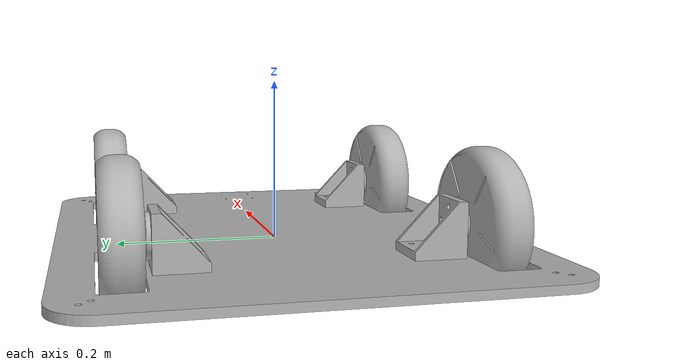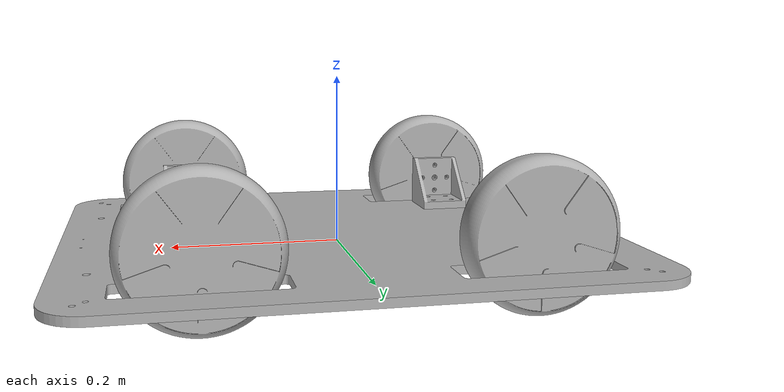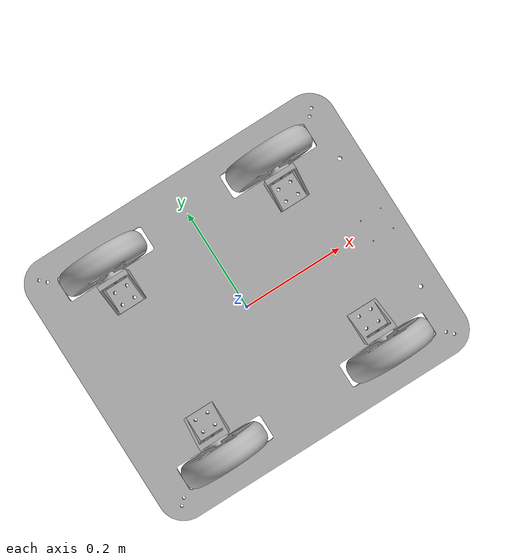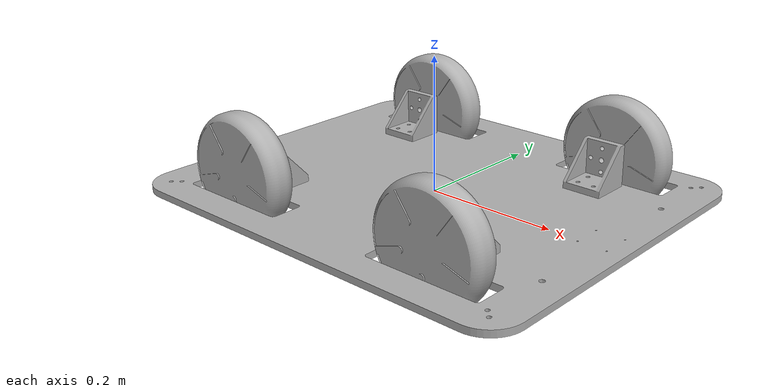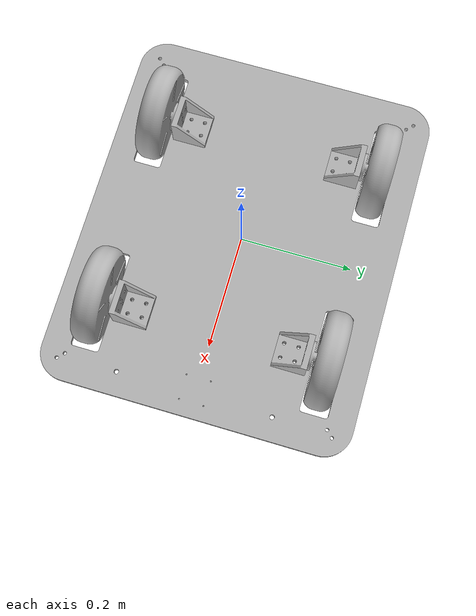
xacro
<?xml version="1.0" ?>
<robot name="rfid_bot" xmlns:xacro="http://www.ros.org/wiki/xacro">

<xacro:include filename="$(find rfid_bot_description)/urdf/materials.xacro" />
<xacro:include filename="$(find rfid_bot_description)/urdf/rfid_bot.trans" />
<xacro:include filename="$(find rfid_bot_description)/urdf/rfid_bot.gazebo" />

<link name="base_link">
  <inertial>
    <origin xyz="-0.0001203609283711639 -9.007685506002144e-08 0.005" rpy="0 0 0"/>
    <mass value="2.3676720209661735"/>
    <inertia ixx="0.054685" iyy="0.084178" izz="0.138823" ixy="0.0" iyz="0.0" ixz="0.0"/>
  </inertial>
  <visual>
    <origin xyz="0 0 0" rpy="0 0 0"/>
    <geometry>
      <mesh filename="file://$(find rfid_bot_description)/meshes/base_link.stl" scale="0.001 0.001 0.001"/>
    </geometry>
    <material name="silver"/>
  </visual>
  <collision>
    <origin xyz="0 0 0" rpy="0 0 0"/>
    <geometry>
      <mesh filename="file://$(find rfid_bot_description)/meshes/base_link.stl" scale="0.001 0.001 0.001"/>
    </geometry>
  </collision>
</link>

<link name="motor_holder_front_right_1">
  <inertial>
    <origin xyz="0.012727999999996908 -0.0025432300955718357 0.0210109228668195" rpy="0 0 0"/>
    <mass value="0.1994053104208443"/>
    <inertia ixx="0.000127" iyy="0.000144" izz="0.000136" ixy="0.0" iyz="3.3e-05" ixz="-0.0"/>
  </inertial>
  <visual>
    <origin xyz="-0.162272 0.148728 -0.01" rpy="0 0 0"/>
    <geometry>
      <mesh filename="file://$(find rfid_bot_description)/meshes/motor_holder_front_right_1.stl" scale="0.001 0.001 0.001"/>
    </geometry>
    <material name="silver"/>
  </visual>
  <collision>
    <origin xyz="-0.162272 0.148728 -0.01" rpy="0 0 0"/>
    <geometry>
      <mesh filename="file://$(find rfid_bot_description)/meshes/motor_holder_front_right_1.stl" scale="0.001 0.001 0.001"/>
    </geometry>
  </collision>
</link>

<link name="motor_holder_back_right_1">
  <inertial>
    <origin xyz="0.012727999999996908 -0.0025432300955718357 0.0210109228668195" rpy="0 0 0"/>
    <mass value="0.1994053104208443"/>
    <inertia ixx="0.000127" iyy="0.000144" izz="0.000136" ixy="0.0" iyz="3.3e-05" ixz="-0.0"/>
  </inertial>
  <visual>
    <origin xyz="0.187728 0.148728 -0.01" rpy="0 0 0"/>
    <geometry>
      <mesh filename="file://$(find rfid_bot_description)/meshes/motor_holder_back_right_1.stl" scale="0.001 0.001 0.001"/>
    </geometry>
    <material name="silver"/>
  </visual>
  <collision>
    <origin xyz="0.187728 0.148728 -0.01" rpy="0 0 0"/>
    <geometry>
      <mesh filename="file://$(find rfid_bot_description)/meshes/motor_holder_back_right_1.stl" scale="0.001 0.001 0.001"/>
    </geometry>
  </collision>
</link>

<link name="motor_holder_front_left_1">
  <inertial>
    <origin xyz="-0.012727999999995326 0.0025437032647091795 0.021010922866819493" rpy="0 0 0"/>
    <mass value="0.19940531042084406"/>
    <inertia ixx="0.000127" iyy="0.000144" izz="0.000136" ixy="0.0" iyz="-3.3e-05" ixz="0.0"/>
  </inertial>
  <visual>
    <origin xyz="-0.187728 -0.149005 -0.01" rpy="0 0 0"/>
    <geometry>
      <mesh filename="file://$(find rfid_bot_description)/meshes/motor_holder_front_left_1.stl" scale="0.001 0.001 0.001"/>
    </geometry>
    <material name="silver"/>
  </visual>
  <collision>
    <origin xyz="-0.187728 -0.149005 -0.01" rpy="0 0 0"/>
    <geometry>
      <mesh filename="file://$(find rfid_bot_description)/meshes/motor_holder_front_left_1.stl" scale="0.001 0.001 0.001"/>
    </geometry>
  </collision>
</link>

<link name="motor_holder_back_left_1">
  <inertial>
    <origin xyz="-0.012727999999996298 0.002543703264736019 0.021010922866819493" rpy="0 0 0"/>
    <mass value="0.19940531042084406"/>
    <inertia ixx="0.000127" iyy="0.000144" izz="0.000136" ixy="0.0" iyz="-3.3e-05" ixz="0.0"/>
  </inertial>
  <visual>
    <origin xyz="0.162272 -0.149005 -0.01" rpy="0 0 0"/>
    <geometry>
      <mesh filename="file://$(find rfid_bot_description)/meshes/motor_holder_back_left_1.stl" scale="0.001 0.001 0.001"/>
    </geometry>
    <material name="silver"/>
  </visual>
  <collision>
    <origin xyz="0.162272 -0.149005 -0.01" rpy="0 0 0"/>
    <geometry>
      <mesh filename="file://$(find rfid_bot_description)/meshes/motor_holder_back_left_1.stl" scale="0.001 0.001 0.001"/>
    </geometry>
  </collision>
</link>

<link name="motor_front_right_1">
  <inertial>
    <origin xyz="5.828670879282072e-16 -0.03070345073743927 5.551115123125783e-17" rpy="0 0 0"/>
    <mass value="2.1541038683930718"/>
    <inertia ixx="0.00403" iyy="0.007461" izz="0.00403" ixy="0.0" iyz="-0.0" ixz="-0.0"/>
  </inertial>
  <visual>
    <origin xyz="-0.175 0.171 -0.045" rpy="0 0 0"/>
    <geometry>
      <mesh filename="file://$(find rfid_bot_description)/meshes/motor_front_right_1.stl" scale="0.001 0.001 0.001"/>
    </geometry>
    <material name="silver"/>
  </visual>
  <collision>
    <origin xyz="-0.175 0.171 -0.045" rpy="0 0 0"/>
    <geometry>
      <mesh filename="file://$(find rfid_bot_description)/meshes/motor_front_right_1.stl" scale="0.001 0.001 0.001"/>
    </geometry>
  </collision>
</link>

<link name="motor_back_right_1">
  <inertial>
    <origin xyz="6.38378239159465e-16 -0.03070345073743927 5.551115123125783e-17" rpy="0 0 0"/>
    <mass value="2.1541038683930718"/>
    <inertia ixx="0.00403" iyy="0.007461" izz="0.00403" ixy="0.0" iyz="-0.0" ixz="-0.0"/>
  </inertial>
  <visual>
    <origin xyz="0.175 0.171 -0.045" rpy="0 0 0"/>
    <geometry>
      <mesh filename="file://$(find rfid_bot_description)/meshes/motor_back_right_1.stl" scale="0.001 0.001 0.001"/>
    </geometry>
    <material name="silver"/>
  </visual>
  <collision>
    <origin xyz="0.175 0.171 -0.045" rpy="0 0 0"/>
    <geometry>
      <mesh filename="file://$(find rfid_bot_description)/meshes/motor_back_right_1.stl" scale="0.001 0.001 0.001"/>
    </geometry>
  </collision>
</link>

<link name="motor_back_left_1">
  <inertial>
    <origin xyz="-8.604228440844963e-16 0.030703923908720537 5.551115123125783e-17" rpy="0 0 0"/>
    <mass value="2.154103883771447"/>
    <inertia ixx="0.00403" iyy="0.007461" izz="0.00403" ixy="-0.0" iyz="0.0" ixz="0.0"/>
  </inertial>
  <visual>
    <origin xyz="0.175 -0.171277 -0.045" rpy="0 0 0"/>
    <geometry>
      <mesh filename="file://$(find rfid_bot_description)/meshes/motor_back_left_1.stl" scale="0.001 0.001 0.001"/>
    </geometry>
    <material name="silver"/>
  </visual>
  <collision>
    <origin xyz="0.175 -0.171277 -0.045" rpy="0 0 0"/>
    <geometry>
      <mesh filename="file://$(find rfid_bot_description)/meshes/motor_back_left_1.stl" scale="0.001 0.001 0.001"/>
    </geometry>
  </collision>
</link>

<link name="motor_front_left_1">
  <inertial>
    <origin xyz="1.942890293094024e-16 0.030703923908693614 5.551115123125783e-17" rpy="0 0 0"/>
    <mass value="2.154103883771447"/>
    <inertia ixx="0.00403" iyy="0.007461" izz="0.00403" ixy="-0.0" iyz="0.0" ixz="-0.0"/>
  </inertial>
  <visual>
    <origin xyz="-0.175 -0.171277 -0.045" rpy="0 0 0"/>
    <geometry>
      <mesh filename="file://$(find rfid_bot_description)/meshes/motor_front_left_1.stl" scale="0.001 0.001 0.001"/>
    </geometry>
    <material name="silver"/>
  </visual>
  <collision>
    <origin xyz="-0.175 -0.171277 -0.045" rpy="0 0 0"/>
    <geometry>
      <mesh filename="file://$(find rfid_bot_description)/meshes/motor_front_left_1.stl" scale="0.001 0.001 0.001"/>
    </geometry>
  </collision>
</link>

<joint name="motor_holder_front_right_base_link_joint" type="fixed">
  <origin xyz="0.162272 -0.148728 0.01" rpy="0 0 0"/>
  <parent link="base_link"/>
  <child link="motor_holder_front_right_1"/>
</joint>

<joint name="motor_holder_back_right_base_link_joint" type="fixed">
  <origin xyz="-0.187728 -0.148728 0.01" rpy="0 0 0"/>
  <parent link="base_link"/>
  <child link="motor_holder_back_right_1"/>
</joint>

<joint name="motor_holder_front_left_base_link_joint" type="fixed">
  <origin xyz="0.187728 0.149005 0.01" rpy="0 0 0"/>
  <parent link="base_link"/>
  <child link="motor_holder_front_left_1"/>
</joint>

<joint name="motor_holder_back_left_base_link_joint" type="fixed">
  <origin xyz="-0.162272 0.149005 0.01" rpy="0 0 0"/>
  <parent link="base_link"/>
  <child link="motor_holder_back_left_1"/>
</joint>

<joint name="motor_front_right_revolute_joint" type="continuous">
  <origin xyz="0.012728 -0.022272 0.035" rpy="0 0 0"/>
  <parent link="motor_holder_front_right_1"/>
  <child link="motor_front_right_1"/>
  <axis xyz="0.0 1.0 0.0"/>
</joint>

<joint name="motor_back_right_revolute_joint" type="continuous">
  <origin xyz="0.012728 -0.022272 0.035" rpy="0 0 0"/>
  <parent link="motor_holder_back_right_1"/>
  <child link="motor_back_right_1"/>
  <axis xyz="0.0 1.0 0.0"/>
</joint>

<joint name="motor_back_left_revolute_joint" type="continuous">
  <origin xyz="-0.012728 0.022272 0.035" rpy="0 0 0"/>
  <parent link="motor_holder_back_left_1"/>
  <child link="motor_back_left_1"/>
  <axis xyz="0.0 -1.0 0.0"/>
</joint>

<joint name="motor_front_left_revolute_joint" type="continuous">
  <origin xyz="-0.012728 0.022272 0.035" rpy="0 0 0"/>
  <parent link="motor_holder_front_left_1"/>
  <child link="motor_front_left_1"/>
  <axis xyz="0.0 -1.0 0.0"/>
</joint>

</robot>

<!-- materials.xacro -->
<robot name="rfid_bot" xmlns:xacro="http://www.ros.org/wiki/xacro" >

<material name="silver">
  <color rgba="0.700 0.700 0.700 1.000"/>
</material>

</robot>

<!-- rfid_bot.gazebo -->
<robot name="rfid_bot" xmlns:xacro="http://www.ros.org/wiki/xacro" >

<xacro:property name="body_color" value="Gazebo/Silver" />

<gazebo>
  <plugin name="control" filename="libgazebo_ros_control.so"/>
</gazebo>
<gazebo reference="base_link">
  <material>${body_color}</material>
  <mu1>0.2</mu1>
  <mu2>0.2</mu2>
  <self_collide>true</self_collide>
  <gravity>true</gravity>
</gazebo>

<gazebo reference="motor_holder_front_right_1">
  <material>${body_color}</material>
  <mu1>0.2</mu1>
  <mu2>0.2</mu2>
  <self_collide>true</self_collide>
</gazebo>

<gazebo reference="motor_holder_back_right_1">
  <material>${body_color}</material>
  <mu1>0.2</mu1>
  <mu2>0.2</mu2>
  <self_collide>true</self_collide>
</gazebo>

<gazebo reference="motor_holder_front_left_1">
  <material>${body_color}</material>
  <mu1>0.2</mu1>
  <mu2>0.2</mu2>
  <self_collide>true</self_collide>
</gazebo>

<gazebo reference="motor_holder_back_left_1">
  <material>${body_color}</material>
  <mu1>0.2</mu1>
  <mu2>0.2</mu2>
  <self_collide>true</self_collide>
</gazebo>

<gazebo reference="motor_front_right_1">
  <material>${body_color}</material>
  <mu1>0.2</mu1>
  <mu2>0.2</mu2>
  <self_collide>true</self_collide>
</gazebo>

<gazebo reference="motor_back_right_1">
  <material>${body_color}</material>
  <mu1>0.2</mu1>
  <mu2>0.2</mu2>
  <self_collide>true</self_collide>
</gazebo>

<gazebo reference="motor_back_left_1">
  <material>${body_color}</material>
  <mu1>0.2</mu1>
  <mu2>0.2</mu2>
  <self_collide>true</self_collide>
</gazebo>

<gazebo reference="motor_front_left_1">
  <material>${body_color}</material>
  <mu1>0.2</mu1>
  <mu2>0.2</mu2>
  <self_collide>true</self_collide>
</gazebo>

</robot>
